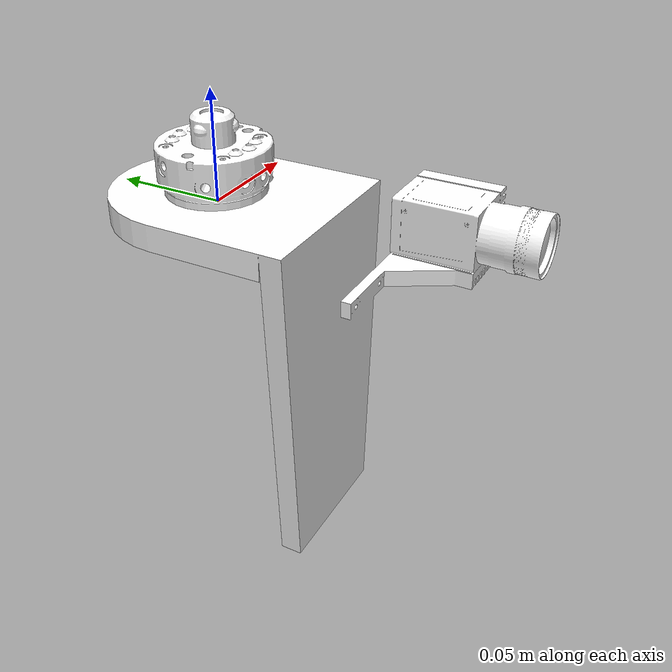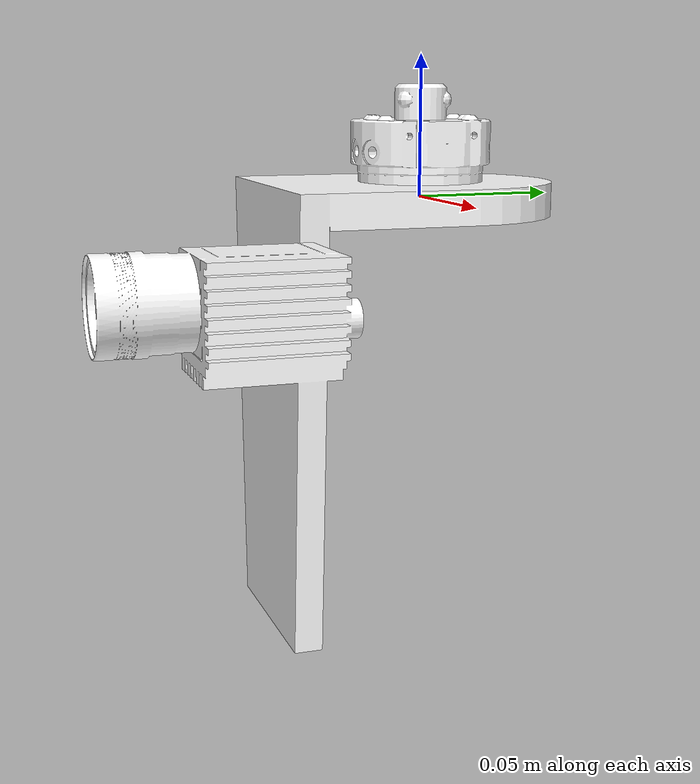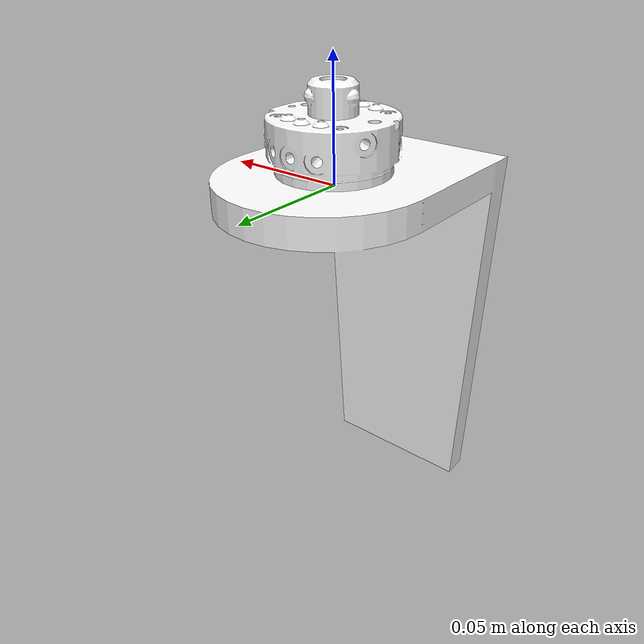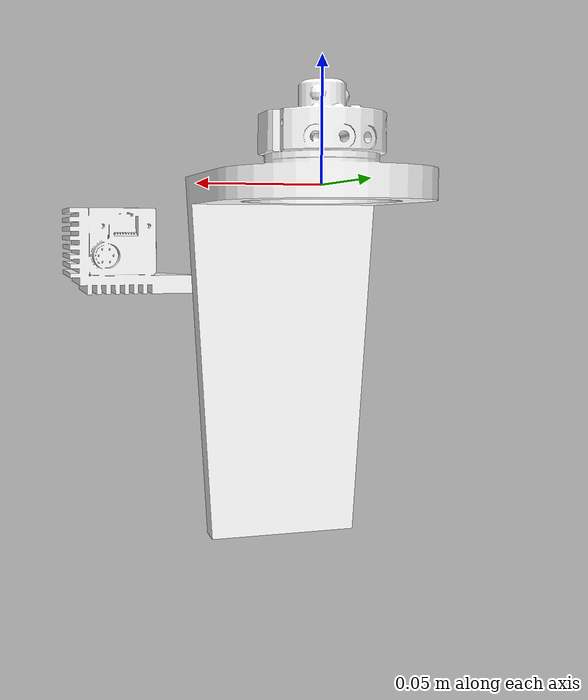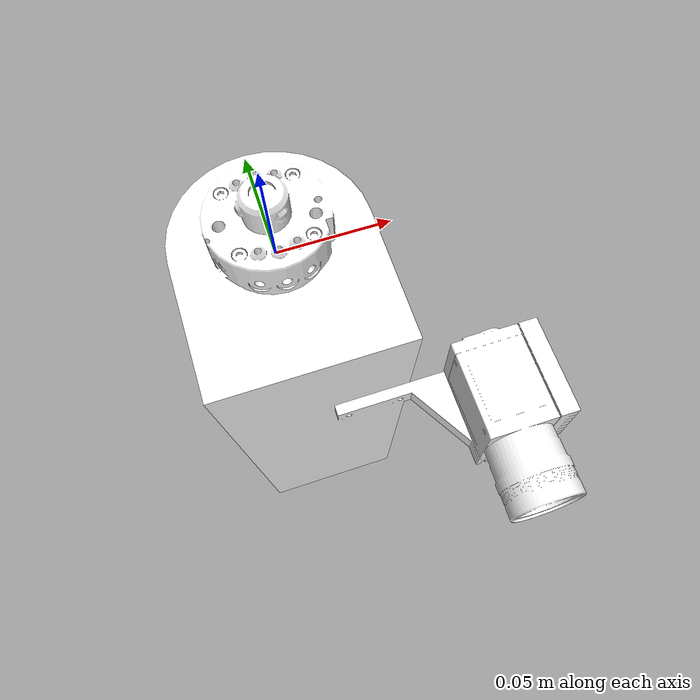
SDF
<?xml version="1.0" ?>
<sdf version="1.6">
  <model name="tool_mount">
    <link name="link">
      <inertial>
        <mass>1</mass>
      </inertial>
      <collision name="collision">
        <geometry>
          <mesh>
            <uri>model://tool_mount/meshes/tool_mount_with_camera_collision.stl</uri>
            <scale>1 1 1</scale>
          </mesh>
        </geometry>
      </collision>
      <visual name="visual">
	    <geometry>
          <mesh>
            <uri>model://tool_mount/meshes/tool_mount_with_camera_visual.dae</uri>
          </mesh>
        </geometry>
        <meta>
            <layer> 1 </layer>
        </meta>
      </visual>
    </link>
  </model>
</sdf>
